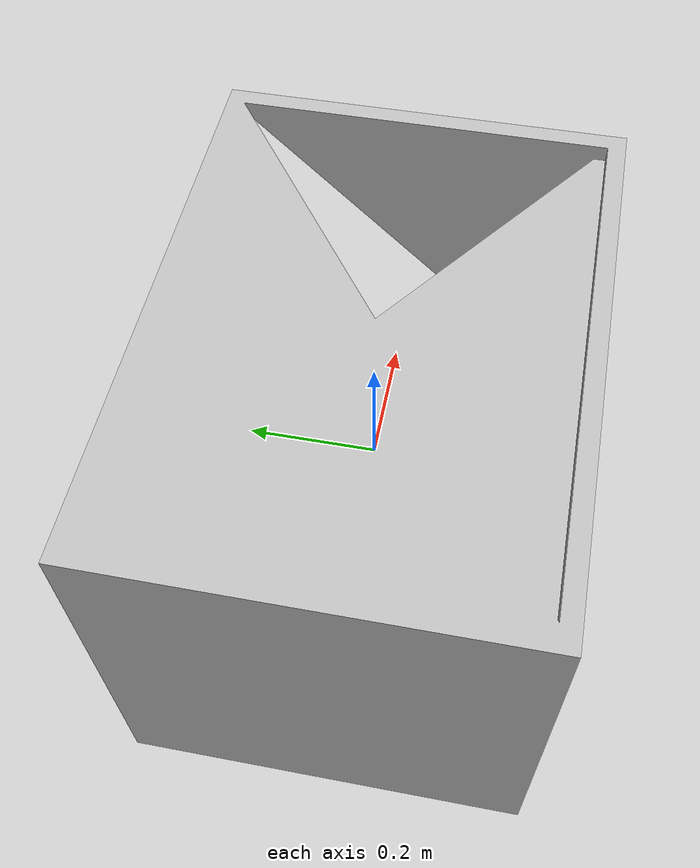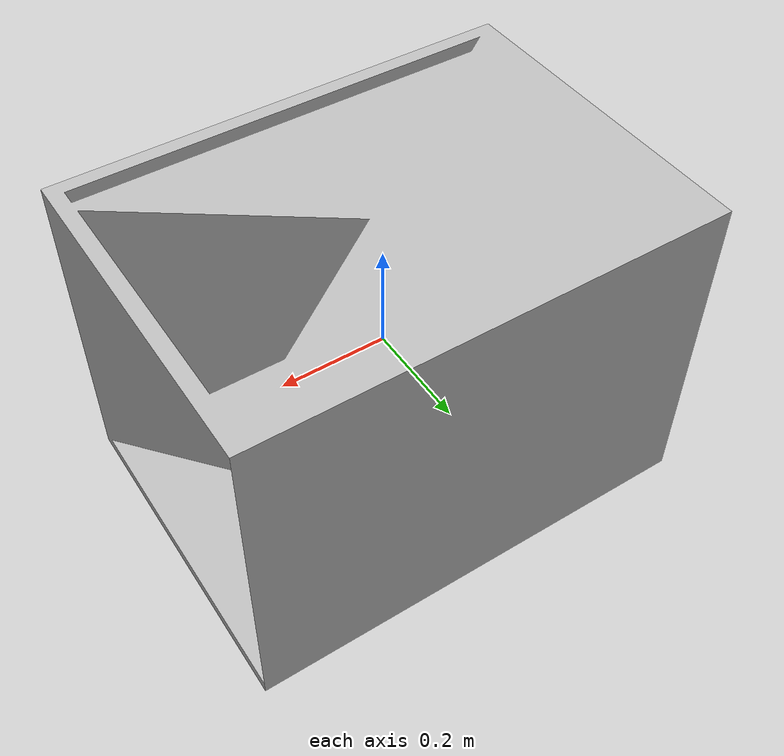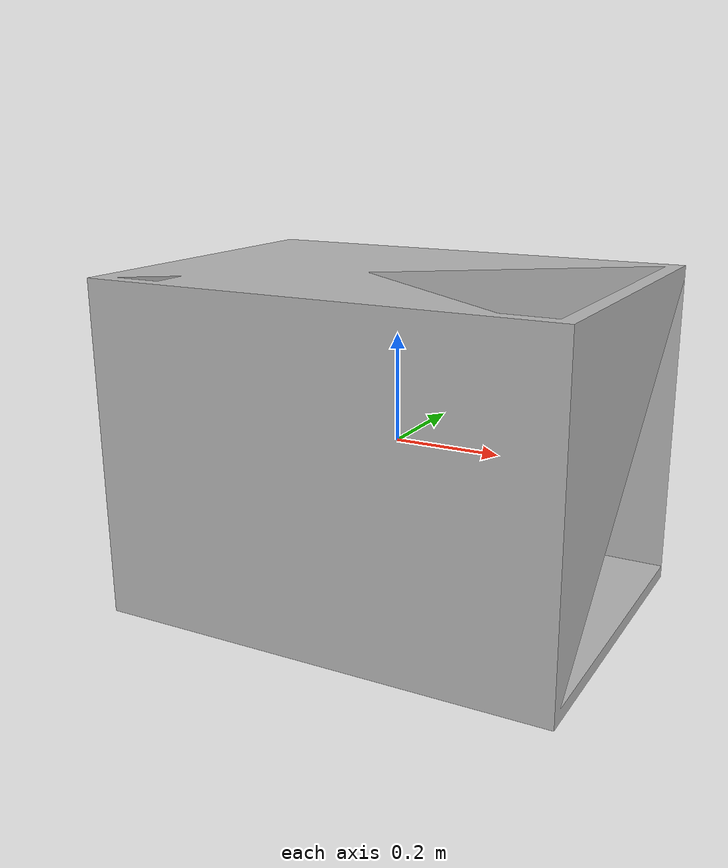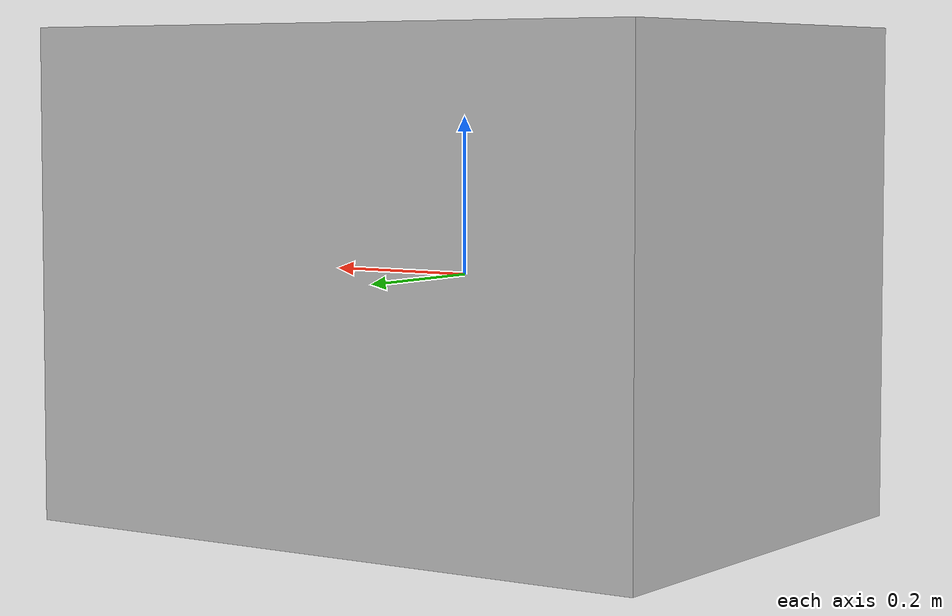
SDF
<?xml version="1.0" ?>
<sdf version="1.5">
<model name="wavetank">
  <static>true</static>
  <link name="dock_link">

  <visual name="dock">
    <pose>0 0 0 0 0 0</pose>
    <geometry>
      <mesh><uri>model://dock/meshes/dock.dae</uri><scale>1.2 1.2 1.2</scale></mesh>
    </geometry>
  </visual>

  <collision name="dock">
    <pose>0 0 0 0 0 0</pose>
    <geometry>
      <mesh><uri>model://dock/meshes/dock.dae</uri><scale>1.2 1.2 1.2</scale></mesh>
    </geometry>
  </collision>

  </link>
</model>
</sdf>
